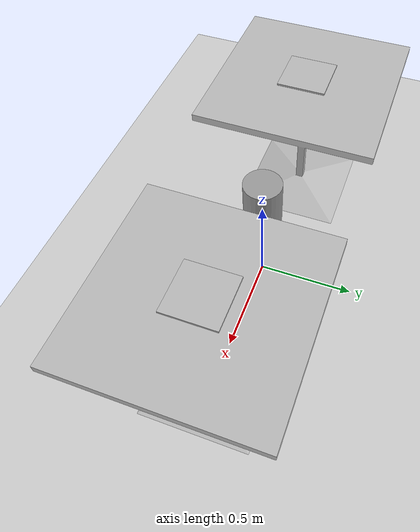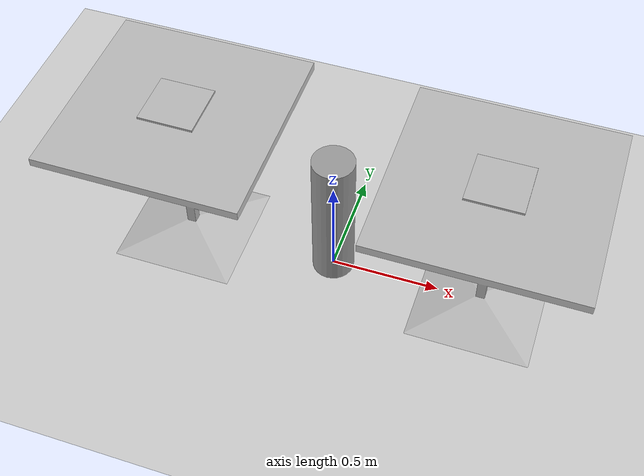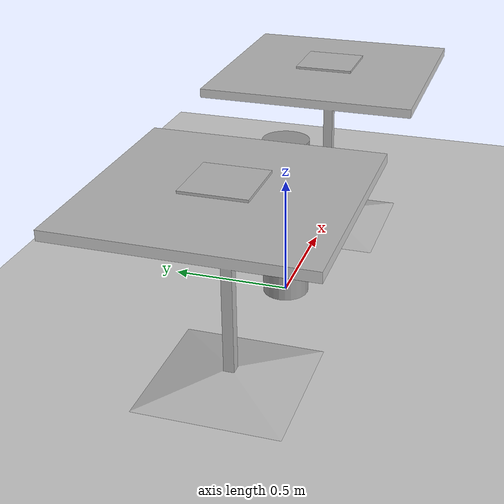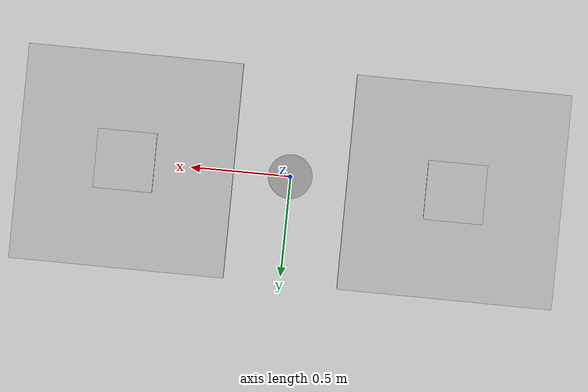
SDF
<sdf version="1.7">
 <world name="default">
  <light name="sun" type="directional">
   <pose>0 0 10 0 -0 0</pose>
   <diffuse>0.8 0.8 0.8 1</diffuse>
   <specular>0.2 0.2 0.2 1</specular>
   <attenuation>
    <range>1000</range>
    <constant>0.9</constant>
    <linear>0.01</linear>
    <quadratic>0.001</quadratic>
   </attenuation>
   <direction>-0.5 0.1 -0.9</direction>
   <spot><inner_angle>0</inner_angle><outer_angle>0</outer_angle><falloff>0</falloff></spot>
  </light>
  <model name="ground_plane">
   <static>1</static>
   <link name="link">
    <collision name="collision">
     <geometry><plane><normal>0 0 1</normal><size>100 100</size></plane></geometry>
     <surface><friction><ode><mu>100</mu><mu2>50</mu2></ode></friction></surface>
    </collision>
    <visual name="visual">
     <cast_shadows>0</cast_shadows>
     <geometry><plane><normal>0 0 1</normal><size>100 100</size></plane></geometry>
     <material>
      <script><uri>file://media/materials/scripts/gazebo.material</uri><name>Gazebo/Grey</name></script>
     </material>
    </visual>
   </link>
  </model>
  <gravity>0 0 -9.8</gravity>
  <magnetic_field>6e-06 2.3e-05 -4.2e-05</magnetic_field>
  <atmosphere type="adiabatic"/>
  <physics type="ode">
   <max_step_size>0.001</max_step_size>
   <real_time_factor>1</real_time_factor>
   <real_time_update_rate>1000</real_time_update_rate>
  </physics>
  <scene><ambient>0.4 0.4 0.4 1</ambient><background>0.7 0.7 0.7 1</background><shadows>1</shadows></scene>
  <spherical_coordinates>
   <surface_model>EARTH_WGS84</surface_model>
   <latitude_deg>0</latitude_deg>
   <longitude_deg>0</longitude_deg>
   <elevation>0</elevation>
   <heading_deg>0</heading_deg>
  </spherical_coordinates>
  <model name="cafe_table">
   <static>1</static>
   <link name="link">
    <collision name="surface">
     <pose>0 0 0.755 0 -0 0</pose>
     <geometry><box><size>0.913 0.913 0.04</size></box></geometry>
    </collision>
    <collision name="column">
     <pose>0 0 0.37 0 -0 0</pose>
     <geometry><box><size>0.042 0.042 0.74</size></box></geometry>
    </collision>
    <collision name="base">
     <pose>0 0 0.02 0 -0 0</pose>
     <geometry><box><size>0.56 0.56 0.04</size></box></geometry>
    </collision>
    <visual name="visual">
     <geometry><mesh><uri>model://cafe_table/meshes/cafe_table.dae</uri></mesh></geometry>
    </visual>
   </link>
   <pose>0.7 0 0 0 -0 0</pose>
  </model>
  <model name="Base">
   <link name="link_4">
    <inertial>
     <mass>0.0264986</mass>
     <inertia>
      <ixx>0.00119698</ixx>
      <ixy>0</ixy>
      <ixz>0</ixz>
      <iyy>0.00119698</iyy>
      <iyz>0</iyz>
      <izz>0.00012238</izz>
     </inertia>
    </inertial>
    <visual name="visual">
     <geometry><cylinder><radius>0.0961079</radius><length>0.717181</length></cylinder></geometry>
     <material>
      <lighting>1</lighting>
      <script><uri>file://media/materials/scripts/gazebo.material</uri><name>Gazebo/Grey</name></script>
      <shader type="pixel"/>
     </material>
    </visual>
    <collision name="collision">
     <geometry><cylinder><radius>0.096108</radius><length>0.717181</length></cylinder></geometry>
     <surface>
      <friction>
       <ode><mu>1</mu><mu2>1</mu2><fdir1>0 0 0</fdir1><slip1>0</slip1><slip2>0</slip2></ode>
       <torsional>
        <coefficient>1</coefficient>
        <patch_radius>0</patch_radius>
        <surface_radius>0</surface_radius>
        <use_patch_radius>1</use_patch_radius>
        <ode><slip>0</slip></ode>
       </torsional>
      </friction>
      <bounce><restitution_coefficient>0</restitution_coefficient><threshold>1e+06</threshold></bounce>
      <contact>
       <collide_without_contact>0</collide_without_contact>
       <collide_without_contact_bitmask>1</collide_without_contact_bitmask>
       <collide_bitmask>1</collide_bitmask>
       <ode>
        <soft_cfm>0</soft_cfm>
        <soft_erp>0.2</soft_erp>
        <kp>1e+13</kp>
        <kd>1</kd>
        <max_vel>0.01</max_vel>
        <min_depth>0</min_depth>
       </ode>
       <bullet>
        <split_impulse>1</split_impulse>
        <split_impulse_penetration_threshold>-0.01</split_impulse_penetration_threshold>
        <soft_cfm>0</soft_cfm>
        <soft_erp>0.2</soft_erp>
        <kp>1e+13</kp>
        <kd>1</kd>
       </bullet>
      </contact>
     </surface>
    </collision>
   </link>
   <static>0</static>
   <pose>2e-06 0 0.327458 0 0 -2e-06</pose>
  </model>
  <model name="cafe_table_0">
   <static>1</static>
   <link name="link">
    <collision name="surface">
     <pose>0 0 0.755 0 -0 0</pose>
     <geometry><box><size>0.913 0.913 0.04</size></box></geometry>
    </collision>
    <collision name="column">
     <pose>0 0 0.37 0 -0 0</pose>
     <geometry><box><size>0.042 0.042 0.74</size></box></geometry>
    </collision>
    <collision name="base">
     <pose>0 0 0.02 0 -0 0</pose>
     <geometry><box><size>0.56 0.56 0.04</size></box></geometry>
    </collision>
    <visual name="visual">
     <geometry><mesh><uri>model://cafe_table/meshes/cafe_table.dae</uri></mesh></geometry>
    </visual>
   </link>
   <pose>-0.7 0 0 0 -0 0</pose>
  </model>
  <model name="my_ground_plane">
   <static>1</static>
   <link name="link">
    <collision name="collision">
     <geometry><box><size>0.25 0.25 0.01</size></box></geometry>
     <surface><friction><ode><mu>100</mu><mu2>50</mu2></ode></friction></surface>
    </collision>
    <visual name="visual">
     <cast_shadows>0</cast_shadows>
     <geometry><box><size>0.25 0.25 0.01</size></box></geometry>
     <material>
      <script>
       <uri>model://my_ground_plane/materials/scripts</uri>
       <uri>model://my_ground_plane/materials/textures/</uri>
       <name>MyGroundPlane/Image</name>
      </script>
     </material>
    </visual>
   </link>
   <pose>0.7 0 0.8 0 -0 0</pose>
  </model>
  <model name="my_ground_plane_clone">
   <static>1</static>
   <link name="link">
    <collision name="collision">
     <geometry><box><size>0.25 0.25 0.01</size></box></geometry>
     <surface><friction><ode><mu>100</mu><mu2>50</mu2></ode></friction></surface>
    </collision>
    <visual name="visual">
     <cast_shadows>0</cast_shadows>
     <geometry><box><size>0.25 0.25 0.01</size></box></geometry>
     <material>
      <script>
       <uri>model://my_ground_plane/materials/scripts</uri>
       <uri>model://my_ground_plane/materials/textures/</uri>
       <name>MyGroundPlane/Image</name>
      </script>
     </material>
    </visual>
   </link>
   <pose>-0.7 0 0.8 0 -0 0</pose>
  </model>
 </world>
</sdf>
